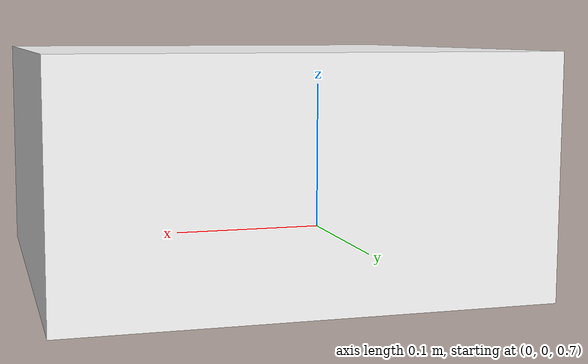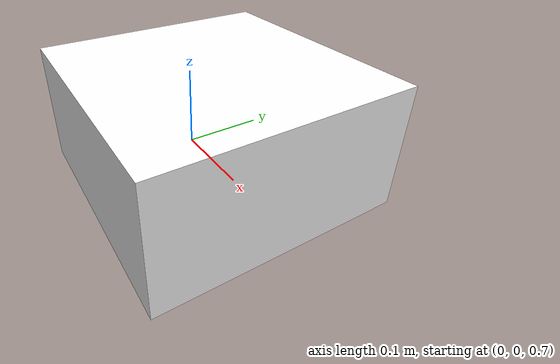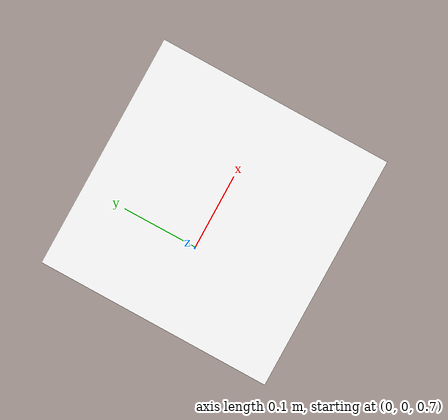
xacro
<?xml version="1.0"?>
<robot xmlns:xacro="http://www.ros.org/wiki/xacro" name="waymasterv1">

    <material name="white">
        <color rgba="1.0 1.0 1.0 1.0"/>
    </material>

    <material name="orange">
        <color rgba="1.0 0.3 0.1 1.0"/>
    </material>

    <material name="blue">
        <color rgba="0.2 0.2 1.0 1.0"/>
    </material>

    <material name="black">
        <color rgba="0 0 0 1.0"/>
    </material>

    <link name="base_link">

    </link>

    <joint name="chassis_joint" type="fixed">
        <parent link="base_link"/>
        <child link="chassis"/>
        <origin xyz="-0.1 0.0 0.0" rpy="0.0 0.0 0.0"/>

    </joint>

    <link name="chassis">
        <visual>
            <origin xyz="0.15 0.0 0.75" rpy="0.0 0.0 0.0"/>
            <geometry>
                <box size="0.3 0.3 0.15"/>
            </geometry>
            <material name="white">
            </material>
        </visual>
    </link>

</robot>
